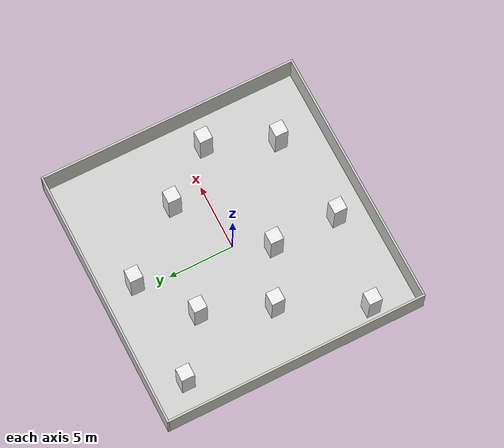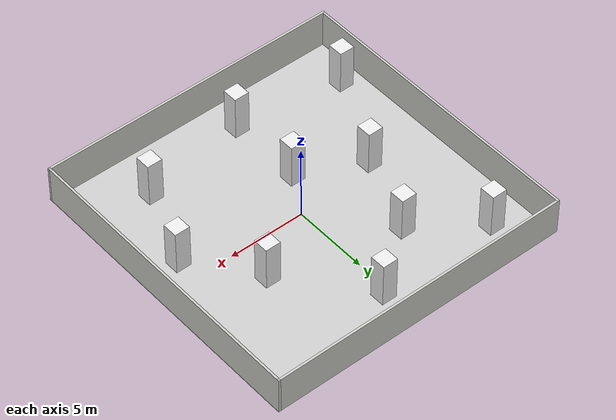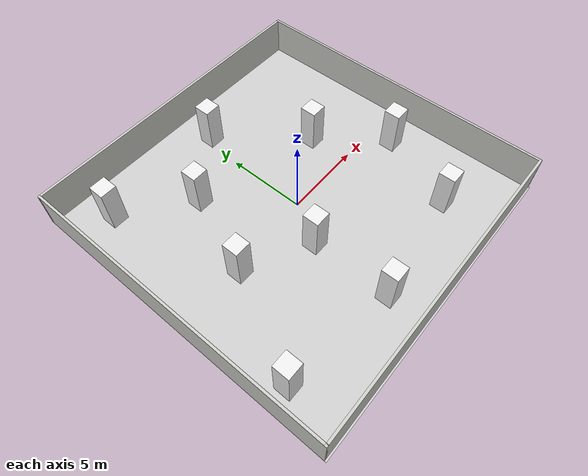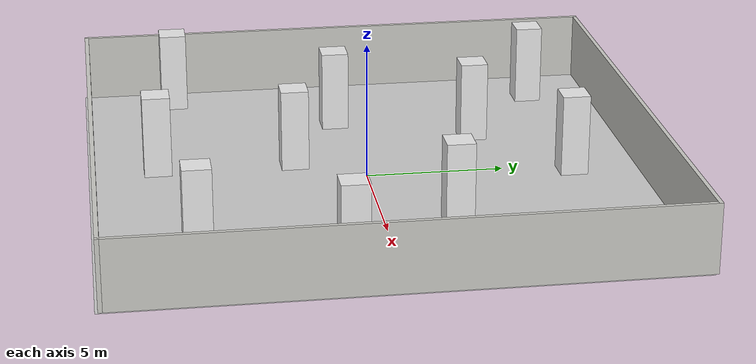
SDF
<sdf version="1.6">
 <world name="default">
  <light name="sun" type="directional">
   <cast_shadows>false</cast_shadows>
   <pose>0 0 10 0 -0 0</pose>
   <diffuse>0.8 0.8 0.8 1</diffuse>
   <specular>0.1 0.1 0.1 1</specular>
   <attenuation>
    <range>1000</range>
    <constant>0.9</constant>
    <linear>0.01</linear>
    <quadratic>0.001</quadratic>
   </attenuation>
   <direction>-0.5 0.5 -1</direction>
  </light>
  <gravity>0 0 -9.8</gravity>
  <magnetic_field>6e-06 2.3e-05 -4.2e-05</magnetic_field>
  <atmosphere type="adiabatic"/>
  <physics name="default_physics" default="0" type="ode">
   <max_step_size>0.001</max_step_size>
   <real_time_factor>1</real_time_factor>
   <real_time_update_rate>1000</real_time_update_rate>
  </physics>
  <scene><ambient>0.4 0.4 0.4 1</ambient><background>0.7 0.7 0.7 1</background><shadows>1</shadows></scene>
  <spherical_coordinates>
   <surface_model>EARTH_WGS84</surface_model>
   <latitude_deg>0</latitude_deg>
   <longitude_deg>0</longitude_deg>
   <elevation>0</elevation>
   <heading_deg>0</heading_deg>
  </spherical_coordinates>
  <model name="ground_line_field_plane">
   <static>1</static>
   <link name="link">
    <collision name="collision">
     <geometry><plane><normal>0 0 1</normal><size>20 20</size></plane></geometry>
     <surface><friction><ode><mu>100</mu><mu2>50</mu2></ode></friction></surface>
    </collision>
    <visual name="visual">
     <cast_shadows>0</cast_shadows>
     <geometry><plane><normal>0 0 1</normal><size>20 20</size></plane></geometry>
     <material>
      <script>
       <uri>model://../../catkin_ws/src/pioneer3dx-robot-core/worlds/models/ground_line_field_plane/materials/scripts</uri>
       <uri>model://../../catkin_ws/src/pioneer3dx-robot-core/worlds/models/ground_line_field_plane/materials/textures</uri>
       <name>GroundLineFieldPlane/Image</name>
      </script>
     </material>
    </visual>
   </link>
  </model>
  <model name="4_walls">
   <pose>-0.00321 0.096568 0 0 -0 0</pose>
   <link name="Wall_0">
    <collision name="Wall_0_Collision">
     <geometry><box><size>20 0.15 2.5</size></box></geometry>
     <pose>0 0 1.25 0 -0 0</pose>
    </collision>
    <visual name="Wall_0_Visual">
     <pose>0 0 1.25 0 -0 0</pose>
     <geometry><box><size>20 0.15 2.5</size></box></geometry>
     <material>
      <script><uri>file://media/materials/scripts/gazebo.material</uri><name>Gazebo/CeilingTiled</name></script>
      <ambient>1 1 1 1</ambient>
     </material>
    </visual>
    <pose>-9.925 0 0 0 0 -1.5708</pose>
   </link>
   <link name="Wall_2">
    <collision name="Wall_2_Collision">
     <geometry><box><size>20 0.15 2.5</size></box></geometry>
     <pose>0 0 1.25 0 -0 0</pose>
    </collision>
    <visual name="Wall_2_Visual">
     <pose>0 0 1.25 0 -0 0</pose>
     <geometry><box><size>20 0.15 2.5</size></box></geometry>
     <material>
      <script><uri>file://media/materials/scripts/gazebo.material</uri><name>Gazebo/CeilingTiled</name></script>
      <ambient>1 1 1 1</ambient>
     </material>
    </visual>
    <pose>0 9.925 0 0 -0 3.14159</pose>
   </link>
   <link name="Wall_4">
    <collision name="Wall_4_Collision">
     <geometry><box><size>20 0.15 2.5</size></box></geometry>
     <pose>0 0 1.25 0 -0 0</pose>
    </collision>
    <visual name="Wall_4_Visual">
     <pose>0 0 1.25 0 -0 0</pose>
     <geometry><box><size>20 0.15 2.5</size></box></geometry>
     <material>
      <script><uri>file://media/materials/scripts/gazebo.material</uri><name>Gazebo/CeilingTiled</name></script>
      <ambient>1 1 1 1</ambient>
     </material>
    </visual>
    <pose>9.925 0 0 0 0 -1.5708</pose>
   </link>
   <link name="Wall_6">
    <collision name="Wall_6_Collision">
     <geometry><box><size>20 0.15 2.5</size></box></geometry>
     <pose>0 0 1.25 0 -0 0</pose>
    </collision>
    <visual name="Wall_6_Visual">
     <pose>0 0 1.25 0 -0 0</pose>
     <geometry><box><size>20 0.15 2.5</size></box></geometry>
     <material>
      <script><uri>file://media/materials/scripts/gazebo.material</uri><name>Gazebo/CeilingTiled</name></script>
      <ambient>1 1 1 1</ambient>
     </material>
    </visual>
    <pose>0 -9.925 0 0 -0 0</pose>
   </link>
   <static>1</static>
  </model>
  <model name="box_1x1x3">
   <link name="link">
    <pose>0 -0 1.5 0 -0 0</pose>
    <inertial>
     <mass>1</mass>
     <inertia>
      <ixx>0.166667</ixx>
      <ixy>0</ixy>
      <ixz>0</ixz>
      <iyy>0.166667</iyy>
      <iyz>0</iyz>
      <izz>0.166667</izz>
     </inertia>
    </inertial>
    <visual name="visual">
     <geometry><box><size>1 1 3</size></box></geometry>
     <material>
      <script><uri>file://media/materials/scripts/gazebo.material</uri><name>Gazebo/White</name></script>
     </material>
    </visual>
    <collision name="collision">
     <geometry><box><size>1 1 3</size></box></geometry>
     <surface>
      <friction>
       <ode><mu>1</mu><mu2>1</mu2><fdir1>0 0 0</fdir1><slip1>0</slip1><slip2>0</slip2></ode>
       <torsional>
        <coefficient>1</coefficient>
        <patch_radius>0</patch_radius>
        <surface_radius>0</surface_radius>
        <use_patch_radius>1</use_patch_radius>
        <ode><slip>0</slip></ode>
       </torsional>
      </friction>
      <bounce><restitution_coefficient>0</restitution_coefficient><threshold>1e+06</threshold></bounce>
      <contact>
       <collide_without_contact>0</collide_without_contact>
       <collide_without_contact_bitmask>1</collide_without_contact_bitmask>
       <collide_bitmask>1</collide_bitmask>
       <ode>
        <soft_cfm>0</soft_cfm>
        <soft_erp>0.2</soft_erp>
        <kp>1e+13</kp>
        <kd>1</kd>
        <max_vel>0.01</max_vel>
        <min_depth>0</min_depth>
       </ode>
       <bullet>
        <split_impulse>1</split_impulse>
        <split_impulse_penetration_threshold>-0.01</split_impulse_penetration_threshold>
        <soft_cfm>0</soft_cfm>
        <soft_erp>0.2</soft_erp>
        <kp>1e+13</kp>
        <kd>1</kd>
       </bullet>
      </contact>
     </surface>
    </collision>
   </link>
   <static>1</static>
   <pose>4.48817 2.51605 0 0 -0 0</pose>
  </model>
  <model name="box_1x1x3_0">
   <link name="link">
    <pose>0 -0 1.5 0 -0 0</pose>
    <inertial>
     <mass>1</mass>
     <inertia>
      <ixx>0.166667</ixx>
      <ixy>0</ixy>
      <ixz>0</ixz>
      <iyy>0.166667</iyy>
      <iyz>0</iyz>
      <izz>0.166667</izz>
     </inertia>
    </inertial>
    <visual name="visual">
     <geometry><box><size>1 1 3</size></box></geometry>
     <material>
      <script><uri>file://media/materials/scripts/gazebo.material</uri><name>Gazebo/White</name></script>
     </material>
    </visual>
    <collision name="collision">
     <geometry><box><size>1 1 3</size></box></geometry>
     <surface>
      <friction>
       <ode><mu>1</mu><mu2>1</mu2><fdir1>0 0 0</fdir1><slip1>0</slip1><slip2>0</slip2></ode>
       <torsional>
        <coefficient>1</coefficient>
        <patch_radius>0</patch_radius>
        <surface_radius>0</surface_radius>
        <use_patch_radius>1</use_patch_radius>
        <ode><slip>0</slip></ode>
       </torsional>
      </friction>
      <bounce><restitution_coefficient>0</restitution_coefficient><threshold>1e+06</threshold></bounce>
      <contact>
       <collide_without_contact>0</collide_without_contact>
       <collide_without_contact_bitmask>1</collide_without_contact_bitmask>
       <collide_bitmask>1</collide_bitmask>
       <ode>
        <soft_cfm>0</soft_cfm>
        <soft_erp>0.2</soft_erp>
        <kp>1e+13</kp>
        <kd>1</kd>
        <max_vel>0.01</max_vel>
        <min_depth>0</min_depth>
       </ode>
       <bullet>
        <split_impulse>1</split_impulse>
        <split_impulse_penetration_threshold>-0.01</split_impulse_penetration_threshold>
        <soft_cfm>0</soft_cfm>
        <soft_erp>0.2</soft_erp>
        <kp>1e+13</kp>
        <kd>1</kd>
       </bullet>
      </contact>
     </surface>
    </collision>
   </link>
   <static>1</static>
   <pose>7.51799 -1.49886 0 0 -0 0</pose>
  </model>
  <model name="box_1x1x3_1">
   <link name="link">
    <pose>0 -0 1.5 0 -0 0</pose>
    <inertial>
     <mass>1</mass>
     <inertia>
      <ixx>0.166667</ixx>
      <ixy>0</ixy>
      <ixz>0</ixz>
      <iyy>0.166667</iyy>
      <iyz>0</iyz>
      <izz>0.166667</izz>
     </inertia>
    </inertial>
    <visual name="visual">
     <geometry><box><size>1 1 3</size></box></geometry>
     <material>
      <script><uri>file://media/materials/scripts/gazebo.material</uri><name>Gazebo/White</name></script>
     </material>
    </visual>
    <collision name="collision">
     <geometry><box><size>1 1 3</size></box></geometry>
     <surface>
      <friction>
       <ode><mu>1</mu><mu2>1</mu2><fdir1>0 0 0</fdir1><slip1>0</slip1><slip2>0</slip2></ode>
       <torsional>
        <coefficient>1</coefficient>
        <patch_radius>0</patch_radius>
        <surface_radius>0</surface_radius>
        <use_patch_radius>1</use_patch_radius>
        <ode><slip>0</slip></ode>
       </torsional>
      </friction>
      <bounce><restitution_coefficient>0</restitution_coefficient><threshold>1e+06</threshold></bounce>
      <contact>
       <collide_without_contact>0</collide_without_contact>
       <collide_without_contact_bitmask>1</collide_without_contact_bitmask>
       <collide_bitmask>1</collide_bitmask>
       <ode>
        <soft_cfm>0</soft_cfm>
        <soft_erp>0.2</soft_erp>
        <kp>1e+13</kp>
        <kd>1</kd>
        <max_vel>0.01</max_vel>
        <min_depth>0</min_depth>
       </ode>
       <bullet>
        <split_impulse>1</split_impulse>
        <split_impulse_penetration_threshold>-0.01</split_impulse_penetration_threshold>
        <soft_cfm>0</soft_cfm>
        <soft_erp>0.2</soft_erp>
        <kp>1e+13</kp>
        <kd>1</kd>
       </bullet>
      </contact>
     </surface>
    </collision>
   </link>
   <static>1</static>
   <pose>5.51614 -6.4846 0 0 -0 0</pose>
  </model>
  <model name="box_1x1x3_3">
   <link name="link">
    <pose>0 -0 1.5 0 -0 0</pose>
    <inertial>
     <mass>1</mass>
     <inertia>
      <ixx>0.166667</ixx>
      <ixy>0</ixy>
      <ixz>0</ixz>
      <iyy>0.166667</iyy>
      <iyz>0</iyz>
      <izz>0.166667</izz>
     </inertia>
    </inertial>
    <visual name="visual">
     <geometry><box><size>1 1 3</size></box></geometry>
     <material>
      <script><uri>file://media/materials/scripts/gazebo.material</uri><name>Gazebo/White</name></script>
     </material>
    </visual>
    <collision name="collision">
     <geometry><box><size>1 1 3</size></box></geometry>
     <surface>
      <friction>
       <ode><mu>1</mu><mu2>1</mu2><fdir1>0 0 0</fdir1><slip1>0</slip1><slip2>0</slip2></ode>
       <torsional>
        <coefficient>1</coefficient>
        <patch_radius>0</patch_radius>
        <surface_radius>0</surface_radius>
        <use_patch_radius>1</use_patch_radius>
        <ode><slip>0</slip></ode>
       </torsional>
      </friction>
      <bounce><restitution_coefficient>0</restitution_coefficient><threshold>1e+06</threshold></bounce>
      <contact>
       <collide_without_contact>0</collide_without_contact>
       <collide_without_contact_bitmask>1</collide_without_contact_bitmask>
       <collide_bitmask>1</collide_bitmask>
       <ode>
        <soft_cfm>0</soft_cfm>
        <soft_erp>0.2</soft_erp>
        <kp>1e+13</kp>
        <kd>1</kd>
        <max_vel>0.01</max_vel>
        <min_depth>0</min_depth>
       </ode>
       <bullet>
        <split_impulse>1</split_impulse>
        <split_impulse_penetration_threshold>-0.01</split_impulse_penetration_threshold>
        <soft_cfm>0</soft_cfm>
        <soft_erp>0.2</soft_erp>
        <kp>1e+13</kp>
        <kd>1</kd>
       </bullet>
      </contact>
     </surface>
    </collision>
   </link>
   <static>1</static>
   <pose>0.464601 7.48097 0 0 -0 0</pose>
  </model>
  <model name="box_1x1x3_4">
   <link name="link">
    <pose>0 -0 1.5 0 -0 0</pose>
    <inertial>
     <mass>1</mass>
     <inertia>
      <ixx>0.166667</ixx>
      <ixy>0</ixy>
      <ixz>0</ixz>
      <iyy>0.166667</iyy>
      <iyz>0</iyz>
      <izz>0.166667</izz>
     </inertia>
    </inertial>
    <visual name="visual">
     <geometry><box><size>1 1 3</size></box></geometry>
     <material>
      <script><uri>file://media/materials/scripts/gazebo.material</uri><name>Gazebo/White</name></script>
     </material>
    </visual>
    <collision name="collision">
     <geometry><box><size>1 1 3</size></box></geometry>
     <surface>
      <friction>
       <ode><mu>1</mu><mu2>1</mu2><fdir1>0 0 0</fdir1><slip1>0</slip1><slip2>0</slip2></ode>
       <torsional>
        <coefficient>1</coefficient>
        <patch_radius>0</patch_radius>
        <surface_radius>0</surface_radius>
        <use_patch_radius>1</use_patch_radius>
        <ode><slip>0</slip></ode>
       </torsional>
      </friction>
      <bounce><restitution_coefficient>0</restitution_coefficient><threshold>1e+06</threshold></bounce>
      <contact>
       <collide_without_contact>0</collide_without_contact>
       <collide_without_contact_bitmask>1</collide_without_contact_bitmask>
       <collide_bitmask>1</collide_bitmask>
       <ode>
        <soft_cfm>0</soft_cfm>
        <soft_erp>0.2</soft_erp>
        <kp>1e+13</kp>
        <kd>1</kd>
        <max_vel>0.01</max_vel>
        <min_depth>0</min_depth>
       </ode>
       <bullet>
        <split_impulse>1</split_impulse>
        <split_impulse_penetration_threshold>-0.01</split_impulse_penetration_threshold>
        <soft_cfm>0</soft_cfm>
        <soft_erp>0.2</soft_erp>
        <kp>1e+13</kp>
        <kd>1</kd>
       </bullet>
      </contact>
     </surface>
    </collision>
   </link>
   <static>1</static>
   <pose>-3.51015 4.51067 0 0 -0 0</pose>
  </model>
  <model name="box_1x1x3_5">
   <link name="link">
    <pose>0 -0 1.5 0 -0 0</pose>
    <inertial>
     <mass>1</mass>
     <inertia>
      <ixx>0.166667</ixx>
      <ixy>0</ixy>
      <ixz>0</ixz>
      <iyy>0.166667</iyy>
      <iyz>0</iyz>
      <izz>0.166667</izz>
     </inertia>
    </inertial>
    <visual name="visual">
     <geometry><box><size>1 1 3</size></box></geometry>
     <material>
      <script><uri>file://media/materials/scripts/gazebo.material</uri><name>Gazebo/White</name></script>
     </material>
    </visual>
    <collision name="collision">
     <geometry><box><size>1 1 3</size></box></geometry>
     <surface>
      <friction>
       <ode><mu>1</mu><mu2>1</mu2><fdir1>0 0 0</fdir1><slip1>0</slip1><slip2>0</slip2></ode>
       <torsional>
        <coefficient>1</coefficient>
        <patch_radius>0</patch_radius>
        <surface_radius>0</surface_radius>
        <use_patch_radius>1</use_patch_radius>
        <ode><slip>0</slip></ode>
       </torsional>
      </friction>
      <bounce><restitution_coefficient>0</restitution_coefficient><threshold>1e+06</threshold></bounce>
      <contact>
       <collide_without_contact>0</collide_without_contact>
       <collide_without_contact_bitmask>1</collide_without_contact_bitmask>
       <collide_bitmask>1</collide_bitmask>
       <ode>
        <soft_cfm>0</soft_cfm>
        <soft_erp>0.2</soft_erp>
        <kp>1e+13</kp>
        <kd>1</kd>
        <max_vel>0.01</max_vel>
        <min_depth>0</min_depth>
       </ode>
       <bullet>
        <split_impulse>1</split_impulse>
        <split_impulse_penetration_threshold>-0.01</split_impulse_penetration_threshold>
        <soft_cfm>0</soft_cfm>
        <soft_erp>0.2</soft_erp>
        <kp>1e+13</kp>
        <kd>1</kd>
       </bullet>
      </contact>
     </surface>
    </collision>
   </link>
   <static>1</static>
   <pose>-7.48022 7.47447 0 0 -0 0</pose>
  </model>
  <model name="box_1x1x3_6">
   <link name="link">
    <pose>0 -0 1.5 0 -0 0</pose>
    <inertial>
     <mass>1</mass>
     <inertia>
      <ixx>0.166667</ixx>
      <ixy>0</ixy>
      <ixz>0</ixz>
      <iyy>0.166667</iyy>
      <iyz>0</iyz>
      <izz>0.166667</izz>
     </inertia>
    </inertial>
    <visual name="visual">
     <geometry><box><size>1 1 3</size></box></geometry>
     <material>
      <script><uri>file://media/materials/scripts/gazebo.material</uri><name>Gazebo/White</name></script>
     </material>
    </visual>
    <collision name="collision">
     <geometry><box><size>1 1 3</size></box></geometry>
     <surface>
      <friction>
       <ode><mu>1</mu><mu2>1</mu2><fdir1>0 0 0</fdir1><slip1>0</slip1><slip2>0</slip2></ode>
       <torsional>
        <coefficient>1</coefficient>
        <patch_radius>0</patch_radius>
        <surface_radius>0</surface_radius>
        <use_patch_radius>1</use_patch_radius>
        <ode><slip>0</slip></ode>
       </torsional>
      </friction>
      <bounce><restitution_coefficient>0</restitution_coefficient><threshold>1e+06</threshold></bounce>
      <contact>
       <collide_without_contact>0</collide_without_contact>
       <collide_without_contact_bitmask>1</collide_without_contact_bitmask>
       <collide_bitmask>1</collide_bitmask>
       <ode>
        <soft_cfm>0</soft_cfm>
        <soft_erp>0.2</soft_erp>
        <kp>1e+13</kp>
        <kd>1</kd>
        <max_vel>0.01</max_vel>
        <min_depth>0</min_depth>
       </ode>
       <bullet>
        <split_impulse>1</split_impulse>
        <split_impulse_penetration_threshold>-0.01</split_impulse_penetration_threshold>
        <soft_cfm>0</soft_cfm>
        <soft_erp>0.2</soft_erp>
        <kp>1e+13</kp>
        <kd>1</kd>
       </bullet>
      </contact>
     </surface>
    </collision>
   </link>
   <static>1</static>
   <pose>-8.5137 -6.51552 0 0 -0 0</pose>
  </model>
  <model name="box_1x1x3_7">
   <link name="link">
    <pose>0 -0 1.5 0 -0 0</pose>
    <inertial>
     <mass>1</mass>
     <inertia>
      <ixx>0.166667</ixx>
      <ixy>0</ixy>
      <ixz>0</ixz>
      <iyy>0.166667</iyy>
      <iyz>0</iyz>
      <izz>0.166667</izz>
     </inertia>
    </inertial>
    <visual name="visual">
     <geometry><box><size>1 1 3</size></box></geometry>
     <material>
      <script><uri>file://media/materials/scripts/gazebo.material</uri><name>Gazebo/White</name></script>
     </material>
    </visual>
    <collision name="collision">
     <geometry><box><size>1 1 3</size></box></geometry>
     <surface>
      <friction>
       <ode><mu>1</mu><mu2>1</mu2><fdir1>0 0 0</fdir1><slip1>0</slip1><slip2>0</slip2></ode>
       <torsional>
        <coefficient>1</coefficient>
        <patch_radius>0</patch_radius>
        <surface_radius>0</surface_radius>
        <use_patch_radius>1</use_patch_radius>
        <ode><slip>0</slip></ode>
       </torsional>
      </friction>
      <bounce><restitution_coefficient>0</restitution_coefficient><threshold>1e+06</threshold></bounce>
      <contact>
       <collide_without_contact>0</collide_without_contact>
       <collide_without_contact_bitmask>1</collide_without_contact_bitmask>
       <collide_bitmask>1</collide_bitmask>
       <ode>
        <soft_cfm>0</soft_cfm>
        <soft_erp>0.2</soft_erp>
        <kp>1e+13</kp>
        <kd>1</kd>
        <max_vel>0.01</max_vel>
        <min_depth>0</min_depth>
       </ode>
       <bullet>
        <split_impulse>1</split_impulse>
        <split_impulse_penetration_threshold>-0.01</split_impulse_penetration_threshold>
        <soft_cfm>0</soft_cfm>
        <soft_erp>0.2</soft_erp>
        <kp>1e+13</kp>
        <kd>1</kd>
       </bullet>
      </contact>
     </surface>
    </collision>
   </link>
   <static>1</static>
   <pose>-5.46464 -0.519116 0 0 -0 0</pose>
  </model>
  <model name="box_1x1x3_9">
   <link name="link">
    <pose>0 -0 1.5 0 -0 0</pose>
    <inertial>
     <mass>1</mass>
     <inertia>
      <ixx>0.166667</ixx>
      <ixy>0</ixy>
      <ixz>0</ixz>
      <iyy>0.166667</iyy>
      <iyz>0</iyz>
      <izz>0.166667</izz>
     </inertia>
    </inertial>
    <visual name="visual">
     <geometry><box><size>1 1 3</size></box></geometry>
     <material>
      <script><uri>file://media/materials/scripts/gazebo.material</uri><name>Gazebo/White</name></script>
     </material>
    </visual>
    <collision name="collision">
     <geometry><box><size>1 1 3</size></box></geometry>
     <surface>
      <friction>
       <ode><mu>1</mu><mu2>1</mu2><fdir1>0 0 0</fdir1><slip1>0</slip1><slip2>0</slip2></ode>
       <torsional>
        <coefficient>1</coefficient>
        <patch_radius>0</patch_radius>
        <surface_radius>0</surface_radius>
        <use_patch_radius>1</use_patch_radius>
        <ode><slip>0</slip></ode>
       </torsional>
      </friction>
      <bounce><restitution_coefficient>0</restitution_coefficient><threshold>1e+06</threshold></bounce>
      <contact>
       <collide_without_contact>0</collide_without_contact>
       <collide_without_contact_bitmask>1</collide_without_contact_bitmask>
       <collide_bitmask>1</collide_bitmask>
       <ode>
        <soft_cfm>0</soft_cfm>
        <soft_erp>0.2</soft_erp>
        <kp>1e+13</kp>
        <kd>1</kd>
        <max_vel>0.01</max_vel>
        <min_depth>0</min_depth>
       </ode>
       <bullet>
        <split_impulse>1</split_impulse>
        <split_impulse_penetration_threshold>-0.01</split_impulse_penetration_threshold>
        <soft_cfm>0</soft_cfm>
        <soft_erp>0.2</soft_erp>
        <kp>1e+13</kp>
        <kd>1</kd>
       </bullet>
      </contact>
     </surface>
    </collision>
   </link>
   <static>1</static>
   <pose>-1.50067 -7.49499 0 0 -0 0</pose>
  </model>
  <model name="box_1x1x3_10">
   <link name="link">
    <pose>0 -0 1.5 0 -0 0</pose>
    <inertial>
     <mass>1</mass>
     <inertia>
      <ixx>0.166667</ixx>
      <ixy>0</ixy>
      <ixz>0</ixz>
      <iyy>0.166667</iyy>
      <iyz>0</iyz>
      <izz>0.166667</izz>
     </inertia>
    </inertial>
    <visual name="visual">
     <geometry><box><size>1 1 3</size></box></geometry>
     <material>
      <script><uri>file://media/materials/scripts/gazebo.material</uri><name>Gazebo/White</name></script>
     </material>
    </visual>
    <collision name="collision">
     <geometry><box><size>1 1 3</size></box></geometry>
     <surface>
      <friction>
       <ode><mu>1</mu><mu2>1</mu2><fdir1>0 0 0</fdir1><slip1>0</slip1><slip2>0</slip2></ode>
       <torsional>
        <coefficient>1</coefficient>
        <patch_radius>0</patch_radius>
        <surface_radius>0</surface_radius>
        <use_patch_radius>1</use_patch_radius>
        <ode><slip>0</slip></ode>
       </torsional>
      </friction>
      <bounce><restitution_coefficient>0</restitution_coefficient><threshold>1e+06</threshold></bounce>
      <contact>
       <collide_without_contact>0</collide_without_contact>
       <collide_without_contact_bitmask>1</collide_without_contact_bitmask>
       <collide_bitmask>1</collide_bitmask>
       <ode>
        <soft_cfm>0</soft_cfm>
        <soft_erp>0.2</soft_erp>
        <kp>1e+13</kp>
        <kd>1</kd>
        <max_vel>0.01</max_vel>
        <min_depth>0</min_depth>
       </ode>
       <bullet>
        <split_impulse>1</split_impulse>
        <split_impulse_penetration_threshold>-0.01</split_impulse_penetration_threshold>
        <soft_cfm>0</soft_cfm>
        <soft_erp>0.2</soft_erp>
        <kp>1e+13</kp>
        <kd>1</kd>
       </bullet>
      </contact>
     </surface>
    </collision>
   </link>
   <static>1</static>
   <pose>-1.47258 -2.49892 0 0 -0 0</pose>
  </model>
 </world>
</sdf>
